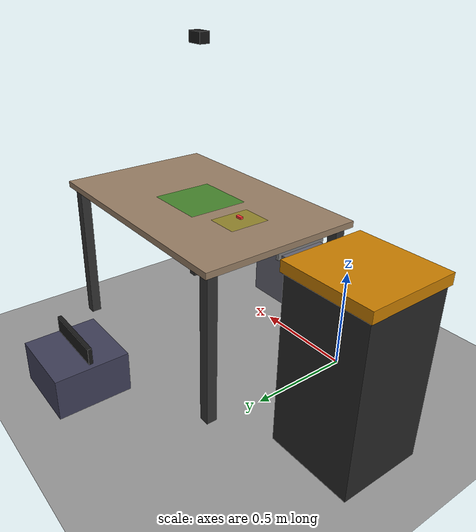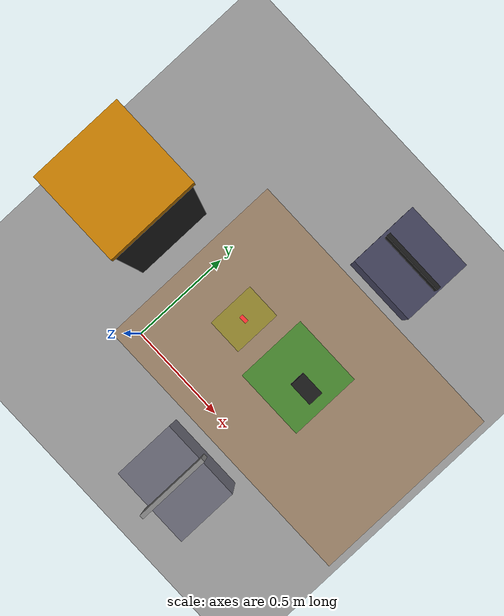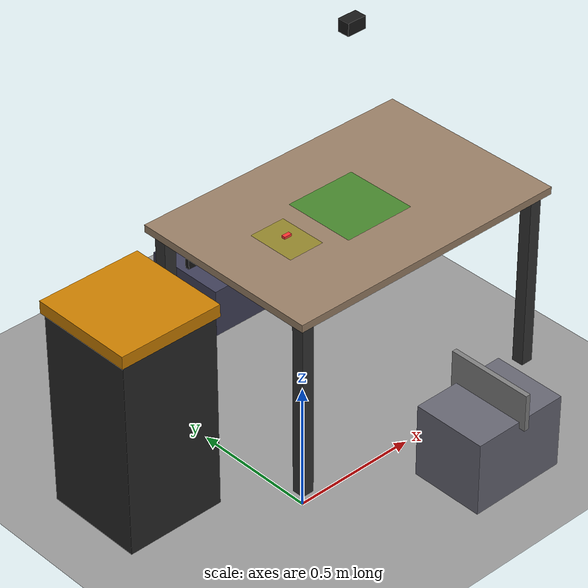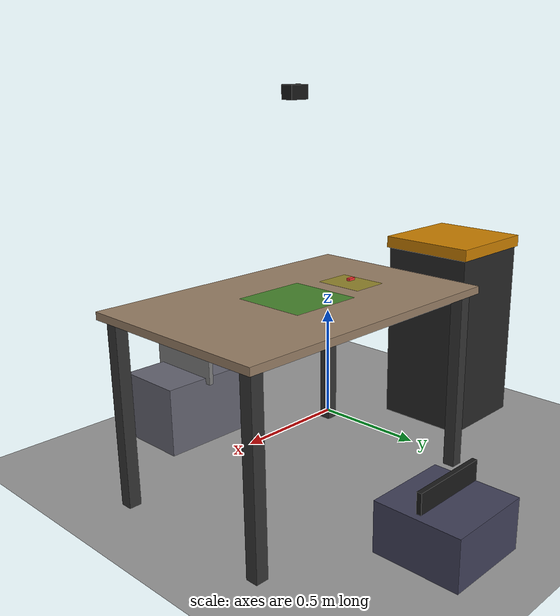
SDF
<?xml version="1.0" ?>
<sdf version="1.6">
  <world name="lego_factory">

    <!-- Physics settings for accurate simulation -->
    <physics type="ode">
      <real_time_update_rate>1000</real_time_update_rate>
      <max_step_size>0.001</max_step_size>
      <real_time_factor>1</real_time_factor>
    </physics>

    <!-- Ambient lighting -->
    <light name="factory_light_1" type="directional">
      <cast_shadows>true</cast_shadows>
      <pose>0 0 10 0 0 0</pose>
      <diffuse>0.8 0.8 0.8 1</diffuse>
      <specular>0.2 0.2 0.2 1</specular>
      <attenuation>
        <range>1000</range>
        <constant>0.9</constant>
        <linear>0.01</linear>
        <quadratic>0.001</quadratic>
      </attenuation>
      <direction>-0.5 0.1 -0.9</direction>
    </light>

    <light name="factory_light_2" type="point">
      <pose>1.0 0.5 2.5 0 0 0</pose>
      <diffuse>0.6 0.6 0.6 1</diffuse>
      <specular>0.1 0.1 0.1 1</specular>
      <attenuation>
        <range>20</range>
        <constant>0.5</constant>
        <linear>0.01</linear>
        <quadratic>0.001</quadratic>
      </attenuation>
    </light>

    <!-- Ground plane -->
    <model name="ground_plane">
      <static>true</static>
      <link name="link">
        <collision name="collision">
          <geometry>
            <plane>
              <normal>0 0 1</normal>
              <size>10 10</size>
            </plane>
          </geometry>
          <surface>
            <friction>
              <ode>
                <mu>100</mu>
                <mu2>50</mu2>
              </ode>
            </friction>
          </surface>
        </collision>
        <visual name="visual">
          <geometry>
            <plane>
              <normal>0 0 1</normal>
              <size>10 10</size>
            </plane>
          </geometry>
          <material>
            <ambient>0.3 0.3 0.3 1</ambient>
            <diffuse>0.6 0.6 0.6 1</diffuse>
            <specular>0.1 0.1 0.1 1</specular>
          </material>
        </visual>
      </link>
    </model>

    <!-- Main worktable (1.2m x 0.8m) -->
    <model name="worktable">
      <static>true</static>
      <pose>0.6 0.4 0 0 0 0</pose>
      <link name="table_top">
        <pose>0 0 0.75 0 0 0</pose>
        <collision name="collision">
          <geometry>
            <box>
              <size>1.2 0.8 0.03</size>
            </box>
          </geometry>
        </collision>
        <visual name="visual">
          <geometry>
            <box>
              <size>1.2 0.8 0.03</size>
            </box>
          </geometry>
          <material>
            <ambient>0.4 0.35 0.3 1</ambient>
            <diffuse>0.6 0.5 0.4 1</diffuse>
          </material>
        </visual>
      </link>
      <!-- Table legs -->
      <link name="leg_1">
        <pose>-0.55 -0.35 0.375 0 0 0</pose>
        <collision name="collision">
          <geometry><box><size>0.05 0.05 0.75</size></box></geometry>
        </collision>
        <visual name="visual">
          <geometry><box><size>0.05 0.05 0.75</size></box></geometry>
          <material><ambient>0.2 0.2 0.2 1</ambient></material>
        </visual>
      </link>
      <link name="leg_2">
        <pose>0.55 -0.35 0.375 0 0 0</pose>
        <collision name="collision">
          <geometry><box><size>0.05 0.05 0.75</size></box></geometry>
        </collision>
        <visual name="visual">
          <geometry><box><size>0.05 0.05 0.75</size></box></geometry>
          <material><ambient>0.2 0.2 0.2 1</ambient></material>
        </visual>
      </link>
      <link name="leg_3">
        <pose>-0.55 0.35 0.375 0 0 0</pose>
        <collision name="collision">
          <geometry><box><size>0.05 0.05 0.75</size></box></geometry>
        </collision>
        <visual name="visual">
          <geometry><box><size>0.05 0.05 0.75</size></box></geometry>
          <material><ambient>0.2 0.2 0.2 1</ambient></material>
        </visual>
      </link>
      <link name="leg_4">
        <pose>0.55 0.35 0.375 0 0 0</pose>
        <collision name="collision">
          <geometry><box><size>0.05 0.05 0.75</size></box></geometry>
        </collision>
        <visual name="visual">
          <geometry><box><size>0.05 0.05 0.75</size></box></geometry>
          <material><ambient>0.2 0.2 0.2 1</ambient></material>
        </visual>
      </link>
    </model>

    <!-- Niryo Ned2 Robot Base Position -->
    <model name="ned2_base">
      <static>true</static>
      <pose>0.1 0.4 0.75 0 0 0</pose>
      <link name="base_plate">
        <collision name="collision">
          <geometry>
            <cylinder>
              <radius>0.08</radius>
              <length>0.02</length>
            </cylinder>
          </geometry>
        </collision>
        <visual name="visual">
          <geometry>
            <cylinder>
              <radius>0.08</radius>
              <length>0.02</length>
            </cylinder>
          </geometry>
          <material>
            <ambient>0.1 0.1 0.3 1</ambient>
            <diffuse>0.2 0.2 0.5 1</diffuse>
          </material>
        </visual>
      </link>
    </model>

    <!-- xArm 6 Lite Robot Base Position -->
    <model name="xarm_base">
      <static>true</static>
      <pose>1.1 0.4 0.75 0 0 3.14159</pose>
      <link name="base_plate">
        <collision name="collision">
          <geometry>
            <cylinder>
              <radius>0.08</radius>
              <length>0.02</length>
            </cylinder>
          </geometry>
        </collision>
        <visual name="visual">
          <geometry>
            <cylinder>
              <radius>0.08</radius>
              <length>0.02</length>
            </cylinder>
          </geometry>
          <material>
            <ambient>0.3 0.1 0.1 1</ambient>
            <diffuse>0.5 0.2 0.2 1</diffuse>
          </material>
        </visual>
      </link>
    </model>

    <!-- Formlabs SLA Printer (simplified visual) -->
    <model name="formlabs_printer">
      <static>true</static>
      <pose>-0.4 0.4 0 0 0 0</pose>
      <link name="printer_body">
        <pose>0 0 0.4 0 0 0</pose>
        <collision name="collision">
          <geometry>
            <box>
              <size>0.4 0.4 0.8</size>
            </box>
          </geometry>
        </collision>
        <visual name="visual">
          <geometry>
            <box>
              <size>0.4 0.4 0.8</size>
            </box>
          </geometry>
          <material>
            <ambient>0.1 0.1 0.1 1</ambient>
            <diffuse>0.15 0.15 0.15 1</diffuse>
          </material>
        </visual>
      </link>
      <link name="printer_top">
        <pose>0 0 0.82 0 0 0</pose>
        <collision name="collision">
          <geometry>
            <box>
              <size>0.42 0.42 0.05</size>
            </box>
          </geometry>
        </collision>
        <visual name="visual">
          <geometry>
            <box>
              <size>0.42 0.42 0.05</size>
            </box>
          </geometry>
          <material>
            <ambient>0.4 0.25 0.0 1</ambient>
            <diffuse>0.8 0.5 0.0 1</diffuse>
          </material>
        </visual>
      </link>
    </model>

    <!-- TinyG CNC Machine (simplified visual) -->
    <model name="cnc_machine">
      <static>true</static>
      <pose>0.6 -0.3 0 0 0 0</pose>
      <link name="cnc_base">
        <pose>0 0 0.15 0 0 0</pose>
        <collision name="collision">
          <geometry>
            <box>
              <size>0.4 0.3 0.3</size>
            </box>
          </geometry>
        </collision>
        <visual name="visual">
          <geometry>
            <box>
              <size>0.4 0.3 0.3</size>
            </box>
          </geometry>
          <material>
            <ambient>0.2 0.2 0.25 1</ambient>
            <diffuse>0.4 0.4 0.45 1</diffuse>
          </material>
        </visual>
      </link>
      <link name="cnc_gantry">
        <pose>0 0 0.35 0 0 0</pose>
        <collision name="collision">
          <geometry>
            <box>
              <size>0.02 0.35 0.15</size>
            </box>
          </geometry>
        </collision>
        <visual name="visual">
          <geometry>
            <box>
              <size>0.02 0.35 0.15</size>
            </box>
          </geometry>
          <material>
            <ambient>0.3 0.3 0.3 1</ambient>
            <diffuse>0.5 0.5 0.5 1</diffuse>
          </material>
        </visual>
      </link>
    </model>

    <!-- MKS Laser Engraver (simplified visual) -->
    <model name="laser_engraver">
      <static>true</static>
      <pose>0.6 1.1 0 0 0 0</pose>
      <link name="laser_base">
        <pose>0 0 0.1 0 0 0</pose>
        <collision name="collision">
          <geometry>
            <box>
              <size>0.35 0.35 0.2</size>
            </box>
          </geometry>
        </collision>
        <visual name="visual">
          <geometry>
            <box>
              <size>0.35 0.35 0.2</size>
            </box>
          </geometry>
          <material>
            <ambient>0.15 0.15 0.2 1</ambient>
            <diffuse>0.25 0.25 0.35 1</diffuse>
          </material>
        </visual>
      </link>
      <link name="laser_gantry">
        <pose>0 0 0.25 0 0 0</pose>
        <collision name="collision">
          <geometry>
            <box>
              <size>0.32 0.02 0.08</size>
            </box>
          </geometry>
        </collision>
        <visual name="visual">
          <geometry>
            <box>
              <size>0.32 0.02 0.08</size>
            </box>
          </geometry>
          <material>
            <ambient>0.1 0.1 0.1 1</ambient>
          </material>
        </visual>
      </link>
    </model>

    <!-- Assembly Zone (LEGO brick staging area) -->
    <model name="assembly_zone">
      <static>true</static>
      <pose>0.6 0.4 0.765 0 0 0</pose>
      <link name="zone_marker">
        <collision name="collision">
          <geometry>
            <box>
              <size>0.3 0.3 0.002</size>
            </box>
          </geometry>
        </collision>
        <visual name="visual">
          <geometry>
            <box>
              <size>0.3 0.3 0.002</size>
            </box>
          </geometry>
          <material>
            <ambient>0.0 0.4 0.0 0.5</ambient>
            <diffuse>0.0 0.6 0.0 0.5</diffuse>
          </material>
        </visual>
      </link>
    </model>

    <!-- Brick pickup zone -->
    <model name="pickup_zone">
      <static>true</static>
      <pose>0.3 0.4 0.765 0 0 0</pose>
      <link name="zone_marker">
        <collision name="collision">
          <geometry>
            <box>
              <size>0.15 0.2 0.002</size>
            </box>
          </geometry>
        </collision>
        <visual name="visual">
          <geometry>
            <box>
              <size>0.15 0.2 0.002</size>
            </box>
          </geometry>
          <material>
            <ambient>0.4 0.4 0.0 0.5</ambient>
            <diffuse>0.6 0.6 0.0 0.5</diffuse>
          </material>
        </visual>
      </link>
    </model>

    <!-- Sample LEGO 2x4 brick -->
    <model name="lego_brick_2x4">
      <pose>0.3 0.4 0.78 0 0 0</pose>
      <link name="brick">
        <inertial>
          <mass>0.002</mass>
          <inertia>
            <ixx>0.0000001</ixx>
            <iyy>0.0000001</iyy>
            <izz>0.0000001</izz>
          </inertia>
        </inertial>
        <collision name="collision">
          <geometry>
            <box>
              <!-- LEGO 2x4: 31.8mm x 15.8mm x 9.6mm -->
              <size>0.0318 0.0158 0.0096</size>
            </box>
          </geometry>
          <surface>
            <friction>
              <ode>
                <mu>0.8</mu>
                <mu2>0.8</mu2>
              </ode>
            </friction>
          </surface>
        </collision>
        <visual name="visual">
          <geometry>
            <box>
              <size>0.0318 0.0158 0.0096</size>
            </box>
          </geometry>
          <material>
            <ambient>0.8 0.1 0.1 1</ambient>
            <diffuse>1.0 0.2 0.2 1</diffuse>
          </material>
        </visual>
      </link>
    </model>

    <!-- Overhead camera for vision system -->
    <model name="overhead_camera">
      <static>true</static>
      <pose>0.6 0.4 1.5 0 1.5708 0</pose>
      <link name="camera_link">
        <collision name="collision">
          <geometry>
            <box>
              <size>0.05 0.05 0.08</size>
            </box>
          </geometry>
        </collision>
        <visual name="visual">
          <geometry>
            <box>
              <size>0.05 0.05 0.08</size>
            </box>
          </geometry>
          <material>
            <ambient>0.1 0.1 0.1 1</ambient>
          </material>
        </visual>
        <sensor name="overhead_camera" type="camera">
          <camera>
            <horizontal_fov>1.047</horizontal_fov>
            <image>
              <width>640</width>
              <height>480</height>
              <format>R8G8B8</format>
            </image>
            <clip>
              <near>0.1</near>
              <far>100</far>
            </clip>
          </camera>
          <always_on>true</always_on>
          <update_rate>30</update_rate>
          <visualize>true</visualize>
          <plugin name="camera_controller" filename="libgazebo_ros_camera.so">
            <ros>
              <namespace>/lego_mcp</namespace>
              <remapping>image_raw:=overhead_camera/image_raw</remapping>
              <remapping>camera_info:=overhead_camera/camera_info</remapping>
            </ros>
            <camera_name>overhead_camera</camera_name>
            <frame_name>overhead_camera_link</frame_name>
          </plugin>
        </sensor>
      </link>
    </model>

    <!-- World plugins -->
    <plugin name="gazebo_ros_state" filename="libgazebo_ros_state.so">
      <ros>
        <namespace>/lego_mcp</namespace>
      </ros>
      <update_rate>50.0</update_rate>
    </plugin>

  </world>
</sdf>
